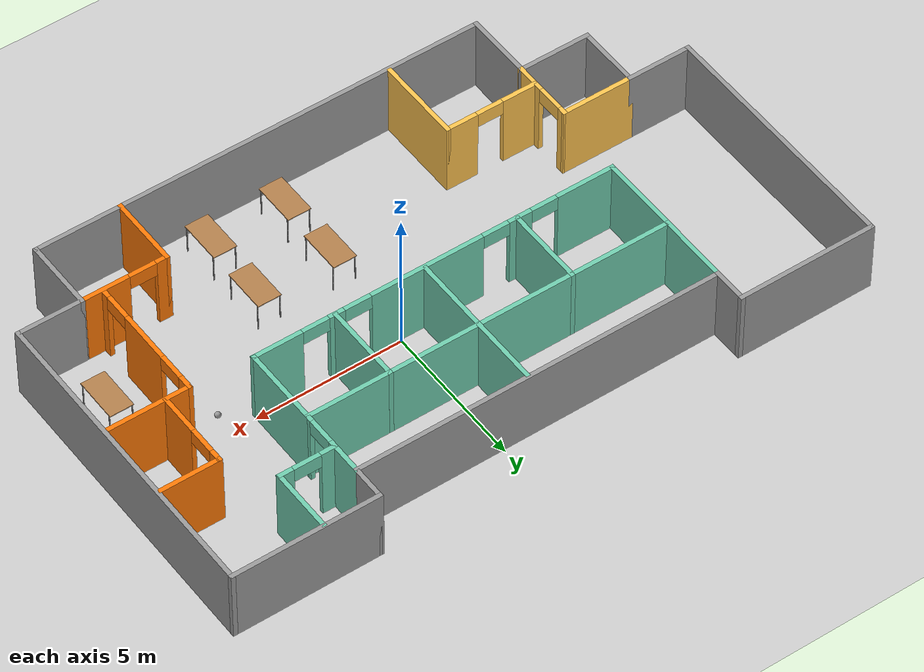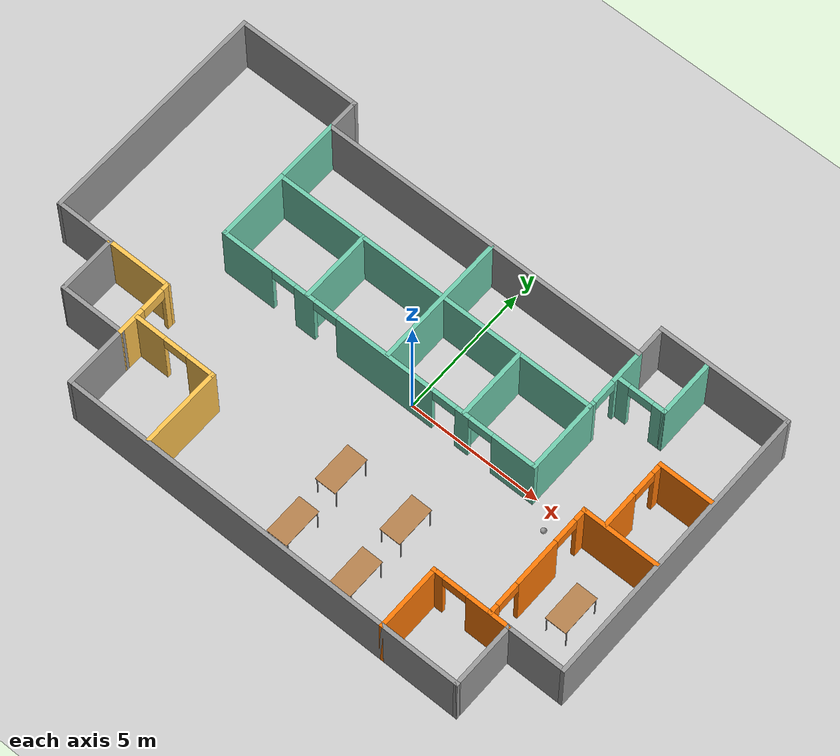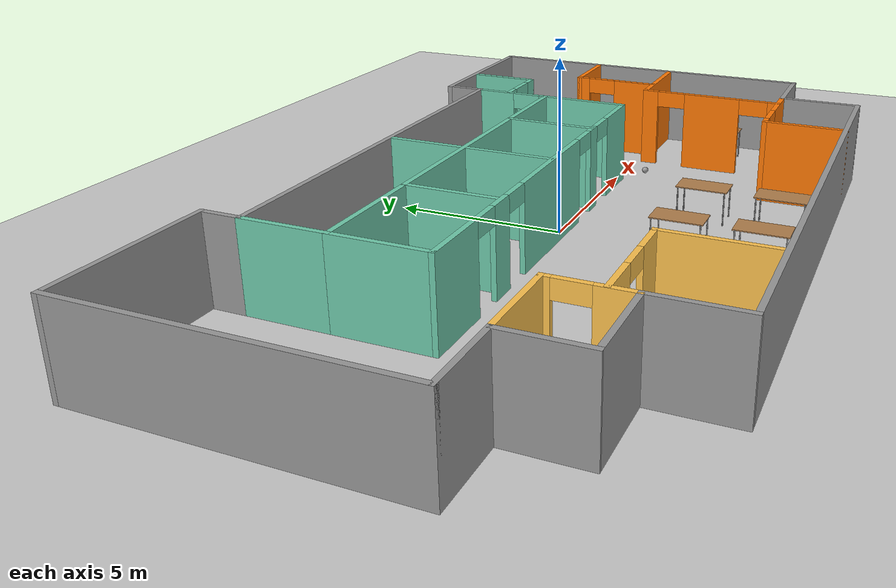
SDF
<sdf version="1.6">
 <world name="default">
  <model name="ground_plane">
   <static>1</static>
   <link name="link">
    <collision name="collision">
     <geometry><plane><normal>0 0 1</normal><size>100 100</size></plane></geometry>
     <surface><friction><ode><mu>100</mu><mu2>50</mu2></ode></friction></surface>
    </collision>
    <visual name="visual">
     <cast_shadows>0</cast_shadows>
     <geometry><plane><normal>0 0 1</normal><size>100 100</size></plane></geometry>
     <material>
      <script><uri>file://media/materials/scripts/gazebo.material</uri><name>Gazebo/Grey</name></script>
     </material>
    </visual>
   </link>
  </model>
  <model name="building">
   <pose>-1.15045 -0.53076 0 0 -0 0</pose>
   <link name="Wall_0">
    <collision name="Wall_0_Collision">
     <geometry><box><size>15.25 0.15 2.5</size></box></geometry>
     <pose>0 0 1.25 0 -0 0</pose>
    </collision>
    <visual name="Wall_0_Visual">
     <pose>0 0 1.25 0 -0 0</pose>
     <geometry><box><size>15.25 0.15 2.5</size></box></geometry>
     <material>
      <script><uri>file://media/materials/scripts/gazebo.material</uri><name>Gazebo/Grey</name></script>
      <ambient>1 1 1 1</ambient>
     </material>
     <meta><layer>0</layer></meta>
    </visual>
    <pose>1.25 -6.47476 0 0 -0 0</pose>
   </link>
   <link name="Wall_10">
    <collision name="Wall_10_Collision">
     <geometry><box><size>4.75 0.15 2.5</size></box></geometry>
     <pose>0 0 1.25 0 -0 0</pose>
    </collision>
    <visual name="Wall_10_Visual">
     <pose>0 0 1.25 0 -0 0</pose>
     <geometry><box><size>4.75 0.15 2.5</size></box></geometry>
     <material>
      <script><uri>file://media/materials/scripts/gazebo.material</uri><name>Gazebo/Grey</name></script>
      <ambient>1 1 1 1</ambient>
     </material>
     <meta><layer>0</layer></meta>
    </visual>
    <pose>-8.6 6.47524 0 0 -0 3.14159</pose>
   </link>
   <link name="Wall_11">
    <collision name="Wall_11_Collision">
     <geometry><box><size>8.75 0.15 2.5</size></box></geometry>
     <pose>0 0 1.25 0 -0 0</pose>
    </collision>
    <visual name="Wall_11_Visual">
     <pose>0 0 1.25 0 -0 0</pose>
     <geometry><box><size>8.75 0.15 2.5</size></box></geometry>
     <material>
      <script><uri>file://media/materials/scripts/gazebo.material</uri><name>Gazebo/Grey</name></script>
      <ambient>1 1 1 1</ambient>
     </material>
     <meta><layer>0</layer></meta>
    </visual>
    <pose>-10.9 2.17524 0 0 0 -1.5708</pose>
   </link>
   <link name="Wall_16">
    <collision name="Wall_16_Collision">
     <geometry><box><size>2.25 0.15 2.5</size></box></geometry>
     <pose>0 0 1.25 0 -0 0</pose>
    </collision>
    <visual name="Wall_16_Visual">
     <pose>0 0 1.25 0 -0 0</pose>
     <geometry><box><size>2.25 0.15 2.5</size></box></geometry>
     <material>
      <script><uri>file://media/materials/scripts/gazebo.material</uri><name>Gazebo/Grey</name></script>
      <ambient>1 1 1 1</ambient>
     </material>
     <meta><layer>0</layer></meta>
    </visual>
    <pose>-9.85 -2.12476 0 0 -0 0</pose>
   </link>
   <link name="Wall_17">
    <collision name="Wall_17_Collision">
     <geometry><box><size>2.25 0.15 2.5</size></box></geometry>
     <pose>0 0 1.25 0 -0 0</pose>
    </collision>
    <visual name="Wall_17_Visual">
     <pose>0 0 1.25 0 -0 0</pose>
     <geometry><box><size>2.25 0.15 2.5</size></box></geometry>
     <material>
      <script><uri>file://media/materials/scripts/gazebo.material</uri><name>Gazebo/Grey</name></script>
      <ambient>1 1 1 1</ambient>
     </material>
     <meta><layer>0</layer></meta>
    </visual>
    <pose>-8.8 -3.17476 0 0 0 -1.5708</pose>
   </link>
   <link name="Wall_18">
    <collision name="Wall_18_Collision">
     <geometry><box><size>2.5 0.15 2.5</size></box></geometry>
     <pose>0 0 1.25 0 -0 0</pose>
    </collision>
    <visual name="Wall_18_Visual">
     <pose>0 0 1.25 0 -0 0</pose>
     <geometry><box><size>2.5 0.15 2.5</size></box></geometry>
     <material>
      <script><uri>file://media/materials/scripts/gazebo.material</uri><name>Gazebo/Grey</name></script>
      <ambient>1 1 1 1</ambient>
     </material>
     <meta><layer>0</layer></meta>
    </visual>
    <pose>-7.62478 -4.225 0 0 0 -0.000201</pose>
   </link>
   <link name="Wall_19">
    <collision name="Wall_19_Collision">
     <geometry><box><size>2.4 0.15 2.5</size></box></geometry>
     <pose>0 0 1.25 0 -0 0</pose>
    </collision>
    <visual name="Wall_19_Visual">
     <pose>0 0 1.25 0 -0 0</pose>
     <geometry><box><size>2.4 0.15 2.5</size></box></geometry>
     <material>
      <script><uri>file://media/materials/scripts/gazebo.material</uri><name>Gazebo/Grey</name></script>
      <ambient>1 1 1 1</ambient>
     </material>
     <meta><layer>0</layer></meta>
    </visual>
    <pose>-6.44955 -5.35024 0 0 0 -1.5708</pose>
   </link>
   <link name="Wall_21">
    <pose>7.375 -4.12476 0 0 -0 3.14159</pose>
    <visual name="Wall_21_Visual_0">
     <pose>-0.674221 0 1.25 0 -0 0</pose>
     <geometry><box><size>1.65156 0.15 2.5</size></box></geometry>
     <material>
      <script><uri>file://media/materials/scripts/gazebo.material</uri><name>Gazebo/Grey</name></script>
      <ambient>0.996078 0.47451 0.0196078 1</ambient>
     </material>
     <meta><layer>0</layer></meta>
    </visual>
    <collision name="Wall_21_Collision_0">
     <geometry><box><size>1.65156 0.15 2.5</size></box></geometry>
     <pose>-0.674221 0 1.25 0 -0 0</pose>
    </collision>
    <visual name="Wall_21_Visual_1">
     <pose>1.27578 0 1.25 0 -0 0</pose>
     <geometry><box><size>0.448442 0.15 2.5</size></box></geometry>
     <material>
      <script><uri>file://media/materials/scripts/gazebo.material</uri><name>Gazebo/Grey</name></script>
      <ambient>0.996078 0.47451 0.0196078 1</ambient>
     </material>
     <meta><layer>0</layer></meta>
    </visual>
    <collision name="Wall_21_Collision_1">
     <geometry><box><size>0.448442 0.15 2.5</size></box></geometry>
     <pose>1.27578 0 1.25 0 -0 0</pose>
    </collision>
    <visual name="Wall_21_Visual_2">
     <pose>0.601558 0 2.25 0 -0 0</pose>
     <geometry><box><size>0.9 0.15 0.5</size></box></geometry>
     <material>
      <script><uri>file://media/materials/scripts/gazebo.material</uri><name>Gazebo/Grey</name></script>
      <ambient>0.996078 0.47451 0.0196078 1</ambient>
     </material>
     <meta><layer>0</layer></meta>
    </visual>
    <collision name="Wall_21_Collision_2">
     <geometry><box><size>0.9 0.15 0.5</size></box></geometry>
     <pose>0.601558 0 2.25 0 -0 0</pose>
    </collision>
   </link>
   <link name="Wall_22">
    <collision name="Wall_22_Collision">
     <geometry><box><size>2.5 0.15 2.5</size></box></geometry>
     <pose>0 0 1.25 0 -0 0</pose>
    </collision>
    <visual name="Wall_22_Visual">
     <pose>0 0 1.25 0 -0 0</pose>
     <geometry><box><size>2.5 0.15 2.5</size></box></geometry>
     <material>
      <script><uri>file://media/materials/scripts/gazebo.material</uri><name>Gazebo/Grey</name></script>
      <ambient>0.996078 0.47451 0.0196078 1</ambient>
     </material>
     <meta><layer>0</layer></meta>
    </visual>
    <pose>5.95 -5.29976 0 0 0 -1.5708</pose>
   </link>
   <link name="Wall_24">
    <pose>8.09845 -1.93009 0 0 -0 1.5708</pose>
    <visual name="Wall_24_Visual_0">
     <pose>-2.05684 0 1.25 0 -0 0</pose>
     <geometry><box><size>0.386318 0.15 2.5</size></box></geometry>
     <material>
      <script><uri>file://media/materials/scripts/gazebo.material</uri><name>Gazebo/Grey</name></script>
      <ambient>0.996078 0.47451 0.0196078 1</ambient>
     </material>
     <meta><layer>0</layer></meta>
    </visual>
    <collision name="Wall_24_Collision_0">
     <geometry><box><size>0.386318 0.15 2.5</size></box></geometry>
     <pose>-2.05684 0 1.25 0 -0 0</pose>
    </collision>
    <visual name="Wall_24_Visual_1">
     <pose>-0.061912 0 1.25 0 -0 0</pose>
     <geometry><box><size>1.80354 0.15 2.5</size></box></geometry>
     <material>
      <script><uri>file://media/materials/scripts/gazebo.material</uri><name>Gazebo/Grey</name></script>
      <ambient>0.996078 0.47451 0.0196078 1</ambient>
     </material>
     <meta><layer>0</layer></meta>
    </visual>
    <collision name="Wall_24_Collision_1">
     <geometry><box><size>1.80354 0.15 2.5</size></box></geometry>
     <pose>-0.061912 0 1.25 0 -0 0</pose>
    </collision>
    <visual name="Wall_24_Visual_2">
     <pose>1.99493 0 1.25 0 -0 0</pose>
     <geometry><box><size>0.510142 0.15 2.5</size></box></geometry>
     <material>
      <script><uri>file://media/materials/scripts/gazebo.material</uri><name>Gazebo/Grey</name></script>
      <ambient>0.996078 0.47451 0.0196078 1</ambient>
     </material>
     <meta><layer>0</layer></meta>
    </visual>
    <collision name="Wall_24_Collision_2">
     <geometry><box><size>0.510142 0.15 2.5</size></box></geometry>
     <pose>1.99493 0 1.25 0 -0 0</pose>
    </collision>
    <visual name="Wall_24_Visual_3">
     <pose>-1.41368 0 2.25 0 -0 0</pose>
     <geometry><box><size>0.9 0.15 0.5</size></box></geometry>
     <material>
      <script><uri>file://media/materials/scripts/gazebo.material</uri><name>Gazebo/Grey</name></script>
      <ambient>0.996078 0.47451 0.0196078 1</ambient>
     </material>
     <meta><layer>0</layer></meta>
    </visual>
    <collision name="Wall_24_Collision_3">
     <geometry><box><size>0.9 0.15 0.5</size></box></geometry>
     <pose>-1.41368 0 2.25 0 -0 0</pose>
    </collision>
    <visual name="Wall_24_Visual_4">
     <pose>1.28986 0 2.25 0 -0 0</pose>
     <geometry><box><size>0.9 0.15 0.5</size></box></geometry>
     <material>
      <script><uri>file://media/materials/scripts/gazebo.material</uri><name>Gazebo/Grey</name></script>
      <ambient>0.996078 0.47451 0.0196078 1</ambient>
     </material>
     <meta><layer>0</layer></meta>
    </visual>
    <collision name="Wall_24_Collision_4">
     <geometry><box><size>0.9 0.15 0.5</size></box></geometry>
     <pose>1.28986 0 2.25 0 -0 0</pose>
    </collision>
   </link>
   <link name="Wall_25">
    <collision name="Wall_25_Collision">
     <geometry><box><size>2.902 0.15 2.5</size></box></geometry>
     <pose>0 0 1.25 0 -0 0</pose>
    </collision>
    <visual name="Wall_25_Visual">
     <pose>0 0 1.25 0 -0 0</pose>
     <geometry><box><size>2.902 0.15 2.5</size></box></geometry>
     <material>
      <script><uri>file://media/materials/scripts/gazebo.material</uri><name>Gazebo/Grey</name></script>
      <ambient>0.996078 0.47451 0.0196078 1</ambient>
     </material>
     <meta><layer>0</layer></meta>
    </visual>
    <pose>9.47445 0.244763 0 0 -0 0</pose>
   </link>
   <link name="Wall_27">
    <pose>8.8886 1.58853 0 0 -0 1.57091</pose>
    <visual name="Wall_27_Visual_0">
     <pose>-0.675117 0 1.25 0 -0 0</pose>
     <geometry><box><size>1.39976 0.15 2.5</size></box></geometry>
     <material>
      <script><uri>file://media/materials/scripts/gazebo.material</uri><name>Gazebo/Grey</name></script>
      <ambient>0.996078 0.47451 0.0196078 1</ambient>
     </material>
     <meta><layer>0</layer></meta>
    </visual>
    <collision name="Wall_27_Collision_0">
     <geometry><box><size>1.39976 0.15 2.5</size></box></geometry>
     <pose>-0.675117 0 1.25 0 -0 0</pose>
    </collision>
    <visual name="Wall_27_Visual_1">
     <pose>1.14988 0 1.25 0 -0 0</pose>
     <geometry><box><size>0.450235 0.15 2.5</size></box></geometry>
     <material>
      <script><uri>file://media/materials/scripts/gazebo.material</uri><name>Gazebo/Grey</name></script>
      <ambient>0.996078 0.47451 0.0196078 1</ambient>
     </material>
     <meta><layer>0</layer></meta>
    </visual>
    <collision name="Wall_27_Collision_1">
     <geometry><box><size>0.450235 0.15 2.5</size></box></geometry>
     <pose>1.14988 0 1.25 0 -0 0</pose>
    </collision>
    <visual name="Wall_27_Visual_2">
     <pose>0.474765 0 2.25 0 -0 0</pose>
     <geometry><box><size>0.9 0.15 0.5</size></box></geometry>
     <material>
      <script><uri>file://media/materials/scripts/gazebo.material</uri><name>Gazebo/Grey</name></script>
      <ambient>0.996078 0.47451 0.0196078 1</ambient>
     </material>
     <meta><layer>0</layer></meta>
    </visual>
    <collision name="Wall_27_Collision_2">
     <geometry><box><size>0.9 0.15 0.5</size></box></geometry>
     <pose>0.474765 0 2.25 0 -0 0</pose>
    </collision>
   </link>
   <link name="Wall_28">
    <collision name="Wall_28_Collision">
     <geometry><box><size>2.062 0.15 2.5</size></box></geometry>
     <pose>0 0 1.25 0 -0 0</pose>
    </collision>
    <visual name="Wall_28_Visual">
     <pose>0 0 1.25 0 -0 0</pose>
     <geometry><box><size>2.062 0.15 2.5</size></box></geometry>
     <material>
      <script><uri>file://media/materials/scripts/gazebo.material</uri><name>Gazebo/Grey</name></script>
      <ambient>0.996078 0.47451 0.0196078 1</ambient>
     </material>
     <meta><layer>0</layer></meta>
    </visual>
    <pose>9.84445 2.88876 0 0 -0 0</pose>
   </link>
   <link name="Wall_3">
    <collision name="Wall_3_Collision">
     <geometry><box><size>2.5 0.15 2.5</size></box></geometry>
     <pose>0 0 1.25 0 -0 0</pose>
    </collision>
    <visual name="Wall_3_Visual">
     <pose>0 0 1.25 0 -0 0</pose>
     <geometry><box><size>2.5 0.15 2.5</size></box></geometry>
     <material>
      <script><uri>file://media/materials/scripts/gazebo.material</uri><name>Gazebo/Grey</name></script>
      <ambient>1 1 1 1</ambient>
     </material>
     <meta><layer>0</layer></meta>
    </visual>
    <pose>8.8 -5.29976 0 0 -0 1.5708</pose>
   </link>
   <link name="Wall_36">
    <pose>6.05 4.20024 0 0 0 -1.5708</pose>
    <visual name="Wall_36_Visual_0">
     <pose>-0.588316 0 1.25 0 -0 0</pose>
     <geometry><box><size>1.32337 0.15 2.5</size></box></geometry>
     <material>
      <script><uri>file://media/materials/scripts/gazebo.material</uri><name>Gazebo/Grey</name></script>
      <ambient>0.435294 0.796078 0.67451 1</ambient>
     </material>
     <meta><layer>0</layer></meta>
    </visual>
    <collision name="Wall_36_Collision_0">
     <geometry><box><size>1.32337 0.15 2.5</size></box></geometry>
     <pose>-0.588316 0 1.25 0 -0 0</pose>
    </collision>
    <visual name="Wall_36_Visual_1">
     <pose>1.11168 0 1.25 0 -0 0</pose>
     <geometry><box><size>0.276631 0.15 2.5</size></box></geometry>
     <material>
      <script><uri>file://media/materials/scripts/gazebo.material</uri><name>Gazebo/Grey</name></script>
      <ambient>0.435294 0.796078 0.67451 1</ambient>
     </material>
     <meta><layer>0</layer></meta>
    </visual>
    <collision name="Wall_36_Collision_1">
     <geometry><box><size>0.276631 0.15 2.5</size></box></geometry>
     <pose>1.11168 0 1.25 0 -0 0</pose>
    </collision>
    <visual name="Wall_36_Visual_2">
     <pose>0.523369 0 2.25 0 -0 0</pose>
     <geometry><box><size>0.9 0.15 0.5</size></box></geometry>
     <material>
      <script><uri>file://media/materials/scripts/gazebo.material</uri><name>Gazebo/Grey</name></script>
      <ambient>0.435294 0.796078 0.67451 1</ambient>
     </material>
     <meta><layer>0</layer></meta>
    </visual>
    <collision name="Wall_36_Collision_2">
     <geometry><box><size>0.9 0.15 0.5</size></box></geometry>
     <pose>0.523369 0 2.25 0 -0 0</pose>
    </collision>
   </link>
   <link name="Wall_37">
    <collision name="Wall_37_Collision">
     <geometry><box><size>12.5 0.15 2.5</size></box></geometry>
     <pose>0 0 1.25 0 -0 0</pose>
    </collision>
    <visual name="Wall_37_Visual">
     <pose>0 0 1.25 0 -0 0</pose>
     <geometry><box><size>12.5 0.15 2.5</size></box></geometry>
     <material>
      <script><uri>file://media/materials/scripts/gazebo.material</uri><name>Gazebo/Grey</name></script>
      <ambient>0.435294 0.796078 0.67451 1</ambient>
     </material>
     <meta><layer>0</layer></meta>
    </visual>
    <pose>-0.125 3.02524 0 0 -0 3.14159</pose>
   </link>
   <link name="Wall_38">
    <collision name="Wall_38_Collision">
     <geometry><box><size>2.5 0.15 2.5</size></box></geometry>
     <pose>0 0 1.25 0 -0 0</pose>
    </collision>
    <visual name="Wall_38_Visual">
     <pose>0 0 1.25 0 -0 0</pose>
     <geometry><box><size>2.5 0.15 2.5</size></box></geometry>
     <material>
      <script><uri>file://media/materials/scripts/gazebo.material</uri><name>Gazebo/Grey</name></script>
      <ambient>0.435294 0.796078 0.67451 1</ambient>
     </material>
     <meta><layer>0</layer></meta>
    </visual>
    <pose>-6.3 4.20024 0 0 -0 1.5708</pose>
   </link>
   <link name="Wall_4">
    <collision name="Wall_4_Collision">
     <geometry><box><size>2.25 0.15 2.5</size></box></geometry>
     <pose>0 0 1.25 0 -0 0</pose>
    </collision>
    <visual name="Wall_4_Visual">
     <pose>0 0 1.25 0 -0 0</pose>
     <geometry><box><size>2.25 0.15 2.5</size></box></geometry>
     <material>
      <script><uri>file://media/materials/scripts/gazebo.material</uri><name>Gazebo/Grey</name></script>
      <ambient>1 1 1 1</ambient>
     </material>
     <meta><layer>0</layer></meta>
    </visual>
    <pose>9.85 -4.12476 0 0 -0 0</pose>
   </link>
   <link name="Wall_40">
    <collision name="Wall_40_Collision">
     <geometry><box><size>2.7676 0.15 2.5</size></box></geometry>
     <pose>0 0 1.25 0 -0 0</pose>
    </collision>
    <visual name="Wall_40_Visual">
     <pose>0 0 1.25 0 -0 0</pose>
     <geometry><box><size>2.7676 0.15 2.5</size></box></geometry>
     <material>
      <script><uri>file://media/materials/scripts/gazebo.material</uri><name>Gazebo/Grey</name></script>
      <ambient>0.435294 0.796078 0.67451 1</ambient>
     </material>
     <meta><layer>0</layer></meta>
    </visual>
    <pose>6.05 1.71644 0 0 0 -1.5708</pose>
   </link>
   <link name="Wall_41">
    <pose>-0.125 0.388523 0 0 -0 3.14159</pose>
    <visual name="Wall_41_Visual_0">
     <pose>-5.40531 0 1.25 0 -0 0</pose>
     <geometry><box><size>1.68939 0.15 2.5</size></box></geometry>
     <material>
      <script><uri>file://media/materials/scripts/gazebo.material</uri><name>Gazebo/Grey</name></script>
      <ambient>0.435294 0.796078 0.67451 1</ambient>
     </material>
     <meta><layer>0</layer></meta>
    </visual>
    <collision name="Wall_41_Collision_0">
     <geometry><box><size>1.68939 0.15 2.5</size></box></geometry>
     <pose>-5.40531 0 1.25 0 -0 0</pose>
    </collision>
    <visual name="Wall_41_Visual_1">
     <pose>-3.39519 0 1.25 0 -0 0</pose>
     <geometry><box><size>0.530856 0.15 2.5</size></box></geometry>
     <material>
      <script><uri>file://media/materials/scripts/gazebo.material</uri><name>Gazebo/Grey</name></script>
      <ambient>0.435294 0.796078 0.67451 1</ambient>
     </material>
     <meta><layer>0</layer></meta>
    </visual>
    <collision name="Wall_41_Collision_1">
     <geometry><box><size>0.530856 0.15 2.5</size></box></geometry>
     <pose>-3.39519 0 1.25 0 -0 0</pose>
    </collision>
    <visual name="Wall_41_Visual_2">
     <pose>-0.305838 0 1.25 0 -0 0</pose>
     <geometry><box><size>3.84784 0.15 2.5</size></box></geometry>
     <material>
      <script><uri>file://media/materials/scripts/gazebo.material</uri><name>Gazebo/Grey</name></script>
      <ambient>0.435294 0.796078 0.67451 1</ambient>
     </material>
     <meta><layer>0</layer></meta>
    </visual>
    <collision name="Wall_41_Collision_2">
     <geometry><box><size>3.84784 0.15 2.5</size></box></geometry>
     <pose>-0.305838 0 1.25 0 -0 0</pose>
    </collision>
    <visual name="Wall_41_Visual_3">
     <pose>2.91359 0 1.25 0 -0 0</pose>
     <geometry><box><size>0.791011 0.15 2.5</size></box></geometry>
     <material>
      <script><uri>file://media/materials/scripts/gazebo.material</uri><name>Gazebo/Grey</name></script>
      <ambient>0.435294 0.796078 0.67451 1</ambient>
     </material>
     <meta><layer>0</layer></meta>
    </visual>
    <collision name="Wall_41_Collision_3">
     <geometry><box><size>0.791011 0.15 2.5</size></box></geometry>
     <pose>2.91359 0 1.25 0 -0 0</pose>
    </collision>
    <visual name="Wall_41_Visual_4">
     <pose>5.22955 0 1.25 0 -0 0</pose>
     <geometry><box><size>2.04091 0.15 2.5</size></box></geometry>
     <material>
      <script><uri>file://media/materials/scripts/gazebo.material</uri><name>Gazebo/Grey</name></script>
      <ambient>0.435294 0.796078 0.67451 1</ambient>
     </material>
     <meta><layer>0</layer></meta>
    </visual>
    <collision name="Wall_41_Collision_4">
     <geometry><box><size>2.04091 0.15 2.5</size></box></geometry>
     <pose>5.22955 0 1.25 0 -0 0</pose>
    </collision>
    <visual name="Wall_41_Visual_5">
     <pose>-4.11061 0 2.25 0 -0 0</pose>
     <geometry><box><size>0.9 0.15 0.5</size></box></geometry>
     <material>
      <script><uri>file://media/materials/scripts/gazebo.material</uri><name>Gazebo/Grey</name></script>
      <ambient>0.435294 0.796078 0.67451 1</ambient>
     </material>
     <meta><layer>0</layer></meta>
    </visual>
    <collision name="Wall_41_Collision_5">
     <geometry><box><size>0.9 0.15 0.5</size></box></geometry>
     <pose>-4.11061 0 2.25 0 -0 0</pose>
    </collision>
    <visual name="Wall_41_Visual_6">
     <pose>-2.67976 0 2.25 0 -0 0</pose>
     <geometry><box><size>0.9 0.15 0.5</size></box></geometry>
     <material>
      <script><uri>file://media/materials/scripts/gazebo.material</uri><name>Gazebo/Grey</name></script>
      <ambient>0.435294 0.796078 0.67451 1</ambient>
     </material>
     <meta><layer>0</layer></meta>
    </visual>
    <collision name="Wall_41_Collision_6">
     <geometry><box><size>0.9 0.15 0.5</size></box></geometry>
     <pose>-2.67976 0 2.25 0 -0 0</pose>
    </collision>
    <visual name="Wall_41_Visual_7">
     <pose>2.06808 0 2.25 0 -0 0</pose>
     <geometry><box><size>0.9 0.15 0.5</size></box></geometry>
     <material>
      <script><uri>file://media/materials/scripts/gazebo.material</uri><name>Gazebo/Grey</name></script>
      <ambient>0.435294 0.796078 0.67451 1</ambient>
     </material>
     <meta><layer>0</layer></meta>
    </visual>
    <collision name="Wall_41_Collision_7">
     <geometry><box><size>0.9 0.15 0.5</size></box></geometry>
     <pose>2.06808 0 2.25 0 -0 0</pose>
    </collision>
    <visual name="Wall_41_Visual_8">
     <pose>3.75909 0 2.25 0 -0 0</pose>
     <geometry><box><size>0.9 0.15 0.5</size></box></geometry>
     <material>
      <script><uri>file://media/materials/scripts/gazebo.material</uri><name>Gazebo/Grey</name></script>
      <ambient>0.435294 0.796078 0.67451 1</ambient>
     </material>
     <meta><layer>0</layer></meta>
    </visual>
    <collision name="Wall_41_Collision_8">
     <geometry><box><size>0.9 0.15 0.5</size></box></geometry>
     <pose>3.75909 0 2.25 0 -0 0</pose>
    </collision>
   </link>
   <link name="Wall_42">
    <collision name="Wall_42_Collision">
     <geometry><box><size>2.7676 0.15 2.5</size></box></geometry>
     <pose>0 0 1.25 0 -0 0</pose>
    </collision>
    <visual name="Wall_42_Visual">
     <pose>0 0 1.25 0 -0 0</pose>
     <geometry><box><size>2.7676 0.15 2.5</size></box></geometry>
     <material>
      <script><uri>file://media/materials/scripts/gazebo.material</uri><name>Gazebo/Grey</name></script>
      <ambient>0.435294 0.796078 0.67451 1</ambient>
     </material>
     <meta><layer>0</layer></meta>
    </visual>
    <pose>-6.3 1.71644 0 0 -0 1.5708</pose>
   </link>
   <link name="Wall_44">
    <collision name="Wall_44_Collision">
     <geometry><box><size>5 0.15 2.5</size></box></geometry>
     <pose>0 0 1.25 0 -0 0</pose>
    </collision>
    <visual name="Wall_44_Visual">
     <pose>0 0 1.25 0 -0 0</pose>
     <geometry><box><size>5 0.15 2.5</size></box></geometry>
     <material>
      <script><uri>file://media/materials/scripts/gazebo.material</uri><name>Gazebo/Grey</name></script>
      <ambient>0.435294 0.796078 0.67451 1</ambient>
     </material>
     <meta><layer>0</layer></meta>
    </visual>
    <pose>0.267974 2.87546 0 0 0 -1.5708</pose>
   </link>
   <link name="Wall_47">
    <collision name="Wall_47_Collision">
     <geometry><box><size>2.75 0.15 2.5</size></box></geometry>
     <pose>0 0 1.25 0 -0 0</pose>
    </collision>
    <visual name="Wall_47_Visual">
     <pose>0 0 1.25 0 -0 0</pose>
     <geometry><box><size>2.75 0.15 2.5</size></box></geometry>
     <material>
      <script><uri>file://media/materials/scripts/gazebo.material</uri><name>Gazebo/Grey</name></script>
      <ambient>0.435294 0.796078 0.67451 1</ambient>
     </material>
     <meta><layer>0</layer></meta>
    </visual>
    <pose>-2.94321 1.72586 0 0 0 -1.5708</pose>
   </link>
   <link name="Wall_5">
    <collision name="Wall_5_Collision">
     <geometry><box><size>10.75 0.15 2.5</size></box></geometry>
     <pose>0 0 1.25 0 -0 0</pose>
    </collision>
    <visual name="Wall_5_Visual">
     <pose>0 0 1.25 0 -0 0</pose>
     <geometry><box><size>10.75 0.15 2.5</size></box></geometry>
     <material>
      <script><uri>file://media/materials/scripts/gazebo.material</uri><name>Gazebo/Grey</name></script>
      <ambient>1 1 1 1</ambient>
     </material>
     <meta><layer>0</layer></meta>
    </visual>
    <pose>10.9 1.17524 0 0 -0 1.5708</pose>
   </link>
   <link name="Wall_50">
    <collision name="Wall_50_Collision">
     <geometry><box><size>2.75 0.15 2.5</size></box></geometry>
     <pose>0 0 1.25 0 -0 0</pose>
    </collision>
    <visual name="Wall_50_Visual">
     <pose>0 0 1.25 0 -0 0</pose>
     <geometry><box><size>2.75 0.15 2.5</size></box></geometry>
     <material>
      <script><uri>file://media/materials/scripts/gazebo.material</uri><name>Gazebo/Grey</name></script>
      <ambient>0.435294 0.796078 0.67451 1</ambient>
     </material>
     <meta><layer>0</layer></meta>
    </visual>
    <pose>3.30713 1.72586 0 0 0 -1.5708</pose>
   </link>
   <link name="Wall_52">
    <collision name="Wall_52_Collision">
     <geometry><box><size>2.5 0.15 2.5</size></box></geometry>
     <pose>0 0 1.25 0 -0 0</pose>
    </collision>
    <visual name="Wall_52_Visual">
     <pose>0 0 1.25 0 -0 0</pose>
     <geometry><box><size>2.5 0.15 2.5</size></box></geometry>
     <material>
      <script><uri>file://media/materials/scripts/gazebo.material</uri><name>Gazebo/Grey</name></script>
      <ambient>1 0.764706 0.305882 1</ambient>
     </material>
     <meta><layer>0</layer></meta>
    </visual>
    <pose>-7.625 -2.12476 0 0 -0 0</pose>
   </link>
   <link name="Wall_53">
    <pose>-6.44978 -3.175 0 0 0 -1.57058</pose>
    <visual name="Wall_53_Visual_0">
     <pose>-0.973972 0 1.25 0 -0 0</pose>
     <geometry><box><size>0.302529 0.15 2.5</size></box></geometry>
     <material>
      <script><uri>file://media/materials/scripts/gazebo.material</uri><name>Gazebo/Grey</name></script>
      <ambient>1 0.764706 0.305882 1</ambient>
     </material>
     <meta><layer>0</layer></meta>
    </visual>
    <collision name="Wall_53_Collision_0">
     <geometry><box><size>0.302529 0.15 2.5</size></box></geometry>
     <pose>-0.973972 0 1.25 0 -0 0</pose>
    </collision>
    <visual name="Wall_53_Visual_1">
     <pose>0.601265 0 1.25 0 -0 0</pose>
     <geometry><box><size>1.04794 0.15 2.5</size></box></geometry>
     <material>
      <script><uri>file://media/materials/scripts/gazebo.material</uri><name>Gazebo/Grey</name></script>
      <ambient>1 0.764706 0.305882 1</ambient>
     </material>
     <meta><layer>0</layer></meta>
    </visual>
    <collision name="Wall_53_Collision_1">
     <geometry><box><size>1.04794 0.15 2.5</size></box></geometry>
     <pose>0.601265 0 1.25 0 -0 0</pose>
    </collision>
    <visual name="Wall_53_Visual_2">
     <pose>-0.372707 0 2.25 0 -0 0</pose>
     <geometry><box><size>0.9 0.15 0.5</size></box></geometry>
     <material>
      <script><uri>file://media/materials/scripts/gazebo.material</uri><name>Gazebo/Grey</name></script>
      <ambient>1 0.764706 0.305882 1</ambient>
     </material>
     <meta><layer>0</layer></meta>
    </visual>
    <collision name="Wall_53_Collision_2">
     <geometry><box><size>0.9 0.15 0.5</size></box></geometry>
     <pose>-0.372707 0 2.25 0 -0 0</pose>
    </collision>
   </link>
   <link name="Wall_55">
    <pose>-4.87602 -3.53882 0 0 -0 0</pose>
    <visual name="Wall_55_Visual_0">
     <pose>-1.00296 0 1.25 0 -0 0</pose>
     <geometry><box><size>1.24408 0.15 2.5</size></box></geometry>
     <material>
      <script><uri>file://media/materials/scripts/gazebo.material</uri><name>Gazebo/Grey</name></script>
      <ambient>1 0.764706 0.305882 1</ambient>
     </material>
     <meta><layer>0</layer></meta>
    </visual>
    <collision name="Wall_55_Collision_0">
     <geometry><box><size>1.24408 0.15 2.5</size></box></geometry>
     <pose>-1.00296 0 1.25 0 -0 0</pose>
    </collision>
    <visual name="Wall_55_Visual_1">
     <pose>1.07204 0 1.25 0 -0 0</pose>
     <geometry><box><size>1.10592 0.15 2.5</size></box></geometry>
     <material>
      <script><uri>file://media/materials/scripts/gazebo.material</uri><name>Gazebo/Grey</name></script>
      <ambient>1 0.764706 0.305882 1</ambient>
     </material>
     <meta><layer>0</layer></meta>
    </visual>
    <collision name="Wall_55_Collision_1">
     <geometry><box><size>1.10592 0.15 2.5</size></box></geometry>
     <pose>1.07204 0 1.25 0 -0 0</pose>
    </collision>
    <visual name="Wall_55_Visual_2">
     <pose>0.069084 0 2.25 0 -0 0</pose>
     <geometry><box><size>0.9 0.15 0.5</size></box></geometry>
     <material>
      <script><uri>file://media/materials/scripts/gazebo.material</uri><name>Gazebo/Grey</name></script>
      <ambient>1 0.764706 0.305882 1</ambient>
     </material>
     <meta><layer>0</layer></meta>
    </visual>
    <collision name="Wall_55_Collision_2">
     <geometry><box><size>0.9 0.15 0.5</size></box></geometry>
     <pose>0.069084 0 2.25 0 -0 0</pose>
    </collision>
   </link>
   <link name="Wall_56">
    <collision name="Wall_56_Collision">
     <geometry><box><size>3 0.15 2.5</size></box></geometry>
     <pose>0 0 1.25 0 -0 0</pose>
    </collision>
    <visual name="Wall_56_Visual">
     <pose>0 0 1.25 0 -0 0</pose>
     <geometry><box><size>3 0.15 2.5</size></box></geometry>
     <material>
      <script><uri>file://media/materials/scripts/gazebo.material</uri><name>Gazebo/Grey</name></script>
      <ambient>1 0.764706 0.305882 1</ambient>
     </material>
     <meta><layer>0</layer></meta>
    </visual>
    <pose>-3.32602 -4.96382 0 0 0 -1.5708</pose>
   </link>
   <link name="Wall_58">
    <pose>6.96275 4.33258 0 0 -0 0</pose>
    <visual name="Wall_58_Visual_0">
     <pose>-0.699819 0 1.25 0 -0 0</pose>
     <geometry><box><size>0.559396 0.15 2.5</size></box></geometry>
     <material>
      <script><uri>file://media/materials/scripts/gazebo.material</uri><name>Gazebo/Grey</name></script>
      <ambient>0.435294 0.796078 0.67451 1</ambient>
     </material>
     <meta><layer>0</layer></meta>
    </visual>
    <collision name="Wall_58_Collision_0">
     <geometry><box><size>0.559396 0.15 2.5</size></box></geometry>
     <pose>-0.699819 0 1.25 0 -0 0</pose>
    </collision>
    <visual name="Wall_58_Visual_1">
     <pose>0.729698 0 1.25 0 -0 0</pose>
     <geometry><box><size>0.499637 0.15 2.5</size></box></geometry>
     <material>
      <script><uri>file://media/materials/scripts/gazebo.material</uri><name>Gazebo/Grey</name></script>
      <ambient>0.435294 0.796078 0.67451 1</ambient>
     </material>
     <meta><layer>0</layer></meta>
    </visual>
    <collision name="Wall_58_Collision_1">
     <geometry><box><size>0.499637 0.15 2.5</size></box></geometry>
     <pose>0.729698 0 1.25 0 -0 0</pose>
    </collision>
    <visual name="Wall_58_Visual_2">
     <pose>0.02988 0 2.25 0 -0 0</pose>
     <geometry><box><size>0.9 0.15 0.5</size></box></geometry>
     <material>
      <script><uri>file://media/materials/scripts/gazebo.material</uri><name>Gazebo/Grey</name></script>
      <ambient>0.435294 0.796078 0.67451 1</ambient>
     </material>
     <meta><layer>0</layer></meta>
    </visual>
    <collision name="Wall_58_Collision_2">
     <geometry><box><size>0.9 0.15 0.5</size></box></geometry>
     <pose>0.02988 0 2.25 0 -0 0</pose>
    </collision>
   </link>
   <link name="Wall_59">
    <collision name="Wall_59_Collision">
     <geometry><box><size>2.25 0.15 2.5</size></box></geometry>
     <pose>0 0 1.25 0 -0 0</pose>
    </collision>
    <visual name="Wall_59_Visual">
     <pose>0 0 1.25 0 -0 0</pose>
     <geometry><box><size>2.25 0.15 2.5</size></box></geometry>
     <material>
      <script><uri>file://media/materials/scripts/gazebo.material</uri><name>Gazebo/Grey</name></script>
      <ambient>0.435294 0.796078 0.67451 1</ambient>
     </material>
     <meta><layer>0</layer></meta>
    </visual>
    <pose>7.88366 5.38258 0 0 -0 1.5708</pose>
   </link>
   <link name="Wall_6">
    <collision name="Wall_6_Collision">
     <geometry><box><size>5 0.15 2.5</size></box></geometry>
     <pose>0 0 1.25 0 -0 0</pose>
    </collision>
    <visual name="Wall_6_Visual">
     <pose>0 0 1.25 0 -0 0</pose>
     <geometry><box><size>5 0.15 2.5</size></box></geometry>
     <material>
      <script><uri>file://media/materials/scripts/gazebo.material</uri><name>Gazebo/Grey</name></script>
      <ambient>1 1 1 1</ambient>
     </material>
     <meta><layer>0</layer></meta>
    </visual>
    <pose>8.475 6.47524 0 0 -0 3.14159</pose>
   </link>
   <link name="Wall_7">
    <collision name="Wall_7_Collision">
     <geometry><box><size>1.25 0.15 2.5</size></box></geometry>
     <pose>0 0 1.25 0 -0 0</pose>
    </collision>
    <visual name="Wall_7_Visual">
     <pose>0 0 1.25 0 -0 0</pose>
     <geometry><box><size>1.25 0.15 2.5</size></box></geometry>
     <material>
      <script><uri>file://media/materials/scripts/gazebo.material</uri><name>Gazebo/Grey</name></script>
      <ambient>1 1 1 1</ambient>
     </material>
     <meta><layer>0</layer></meta>
    </visual>
    <pose>6.05 5.92524 0 0 0 -1.5708</pose>
   </link>
   <link name="Wall_8">
    <collision name="Wall_8_Collision">
     <geometry><box><size>12.5 0.15 2.5</size></box></geometry>
     <pose>0 0 1.25 0 -0 0</pose>
    </collision>
    <visual name="Wall_8_Visual">
     <pose>0 0 1.25 0 -0 0</pose>
     <geometry><box><size>12.5 0.15 2.5</size></box></geometry>
     <material>
      <script><uri>file://media/materials/scripts/gazebo.material</uri><name>Gazebo/Grey</name></script>
      <ambient>1 1 1 1</ambient>
     </material>
     <meta><layer>0</layer></meta>
    </visual>
    <pose>-0.125 5.37524 0 0 -0 3.14159</pose>
   </link>
   <link name="Wall_9">
    <collision name="Wall_9_Collision">
     <geometry><box><size>1.25 0.15 2.5</size></box></geometry>
     <pose>0 0 1.25 0 -0 0</pose>
    </collision>
    <visual name="Wall_9_Visual">
     <pose>0 0 1.25 0 -0 0</pose>
     <geometry><box><size>1.25 0.15 2.5</size></box></geometry>
     <material>
      <script><uri>file://media/materials/scripts/gazebo.material</uri><name>Gazebo/Grey</name></script>
      <ambient>1 1 1 1</ambient>
     </material>
     <meta><layer>0</layer></meta>
    </visual>
    <pose>-6.3 5.92524 0 0 -0 1.5708</pose>
   </link>
   <static>1</static>
  </model>
  <model name="table_clone_2_clone">
   <static>1</static>
   <link name="link">
    <collision name="surface">
     <pose>0 0 1 0 -0 0</pose>
     <geometry><box><size>1.5 0.8 0.03</size></box></geometry>
     <surface><friction><ode><mu>0.6</mu><mu2>0.6</mu2></ode></friction></surface>
    </collision>
    <visual name="visual1">
     <pose>0 0 1 0 -0 0</pose>
     <geometry><box><size>1.5 0.8 0.03</size></box></geometry>
     <material>
      <script><uri>file://media/materials/scripts/gazebo.material</uri><name>Gazebo/Wood</name></script>
     </material>
    </visual>
    <collision name="front_left_leg">
     <pose>0.68 0.38 0.5 0 -0 0</pose>
     <geometry><cylinder><radius>0.02</radius><length>1</length></cylinder></geometry>
    </collision>
    <visual name="front_left_leg">
     <pose>0.68 0.38 0.5 0 -0 0</pose>
     <geometry><cylinder><radius>0.02</radius><length>1</length></cylinder></geometry>
     <material>
      <script><uri>file://media/materials/scripts/gazebo.material</uri><name>Gazebo/Grey</name></script>
     </material>
    </visual>
    <collision name="front_right_leg">
     <pose>0.68 -0.38 0.5 0 -0 0</pose>
     <geometry><cylinder><radius>0.02</radius><length>1</length></cylinder></geometry>
    </collision>
    <visual name="front_right_leg">
     <pose>0.68 -0.38 0.5 0 -0 0</pose>
     <geometry><cylinder><radius>0.02</radius><length>1</length></cylinder></geometry>
     <material>
      <script><uri>file://media/materials/scripts/gazebo.material</uri><name>Gazebo/Grey</name></script>
     </material>
    </visual>
    <collision name="back_right_leg">
     <pose>-0.68 -0.38 0.5 0 -0 0</pose>
     <geometry><cylinder><radius>0.02</radius><length>1</length></cylinder></geometry>
    </collision>
    <visual name="back_right_leg">
     <pose>-0.68 -0.38 0.5 0 -0 0</pose>
     <geometry><cylinder><radius>0.02</radius><length>1</length></cylinder></geometry>
     <material>
      <script><uri>file://media/materials/scripts/gazebo.material</uri><name>Gazebo/Grey</name></script>
     </material>
    </visual>
    <collision name="back_left_leg">
     <pose>-0.68 0.38 0.5 0 -0 0</pose>
     <geometry><cylinder><radius>0.02</radius><length>1</length></cylinder></geometry>
    </collision>
    <visual name="back_left_leg">
     <pose>-0.68 0.38 0.5 0 -0 0</pose>
     <geometry><cylinder><radius>0.02</radius><length>1</length></cylinder></geometry>
     <material>
      <script><uri>file://media/materials/scripts/gazebo.material</uri><name>Gazebo/Grey</name></script>
     </material>
    </visual>
   </link>
   <pose>2.64427 -5.7064 0 0 -0 1.56891</pose>
  </model>
  <model name="table_clone_2_clone_0">
   <static>1</static>
   <link name="link">
    <collision name="surface">
     <pose>0 0 1 0 -0 0</pose>
     <geometry><box><size>1.5 0.8 0.03</size></box></geometry>
     <surface><friction><ode><mu>0.6</mu><mu2>0.6</mu2></ode></friction></surface>
    </collision>
    <visual name="visual1">
     <pose>0 0 1 0 -0 0</pose>
     <geometry><box><size>1.5 0.8 0.03</size></box></geometry>
     <material>
      <script><uri>file://media/materials/scripts/gazebo.material</uri><name>Gazebo/Wood</name></script>
     </material>
    </visual>
    <collision name="front_left_leg">
     <pose>0.68 0.38 0.5 0 -0 0</pose>
     <geometry><cylinder><radius>0.02</radius><length>1</length></cylinder></geometry>
    </collision>
    <visual name="front_left_leg">
     <pose>0.68 0.38 0.5 0 -0 0</pose>
     <geometry><cylinder><radius>0.02</radius><length>1</length></cylinder></geometry>
     <material>
      <script><uri>file://media/materials/scripts/gazebo.material</uri><name>Gazebo/Grey</name></script>
     </material>
    </visual>
    <collision name="front_right_leg">
     <pose>0.68 -0.38 0.5 0 -0 0</pose>
     <geometry><cylinder><radius>0.02</radius><length>1</length></cylinder></geometry>
    </collision>
    <visual name="front_right_leg">
     <pose>0.68 -0.38 0.5 0 -0 0</pose>
     <geometry><cylinder><radius>0.02</radius><length>1</length></cylinder></geometry>
     <material>
      <script><uri>file://media/materials/scripts/gazebo.material</uri><name>Gazebo/Grey</name></script>
     </material>
    </visual>
    <collision name="back_right_leg">
     <pose>-0.68 -0.38 0.5 0 -0 0</pose>
     <geometry><cylinder><radius>0.02</radius><length>1</length></cylinder></geometry>
    </collision>
    <visual name="back_right_leg">
     <pose>-0.68 -0.38 0.5 0 -0 0</pose>
     <geometry><cylinder><radius>0.02</radius><length>1</length></cylinder></geometry>
     <material>
      <script><uri>file://media/materials/scripts/gazebo.material</uri><name>Gazebo/Grey</name></script>
     </material>
    </visual>
    <collision name="back_left_leg">
     <pose>-0.68 0.38 0.5 0 -0 0</pose>
     <geometry><cylinder><radius>0.02</radius><length>1</length></cylinder></geometry>
    </collision>
    <visual name="back_left_leg">
     <pose>-0.68 0.38 0.5 0 -0 0</pose>
     <geometry><cylinder><radius>0.02</radius><length>1</length></cylinder></geometry>
     <material>
      <script><uri>file://media/materials/scripts/gazebo.material</uri><name>Gazebo/Grey</name></script>
     </material>
    </visual>
   </link>
   <pose>0.101848 -5.67563 0 0 -0 1.56891</pose>
  </model>
  <model name="table_clone_2_clone_2">
   <static>1</static>
   <link name="link">
    <collision name="surface">
     <pose>0 0 1 0 -0 0</pose>
     <geometry><box><size>1.5 0.8 0.03</size></box></geometry>
     <surface><friction><ode><mu>0.6</mu><mu2>0.6</mu2></ode></friction></surface>
    </collision>
    <visual name="visual1">
     <pose>0 0 1 0 -0 0</pose>
     <geometry><box><size>1.5 0.8 0.03</size></box></geometry>
     <material>
      <script><uri>file://media/materials/scripts/gazebo.material</uri><name>Gazebo/Wood</name></script>
     </material>
    </visual>
    <collision name="front_left_leg">
     <pose>0.68 0.38 0.5 0 -0 0</pose>
     <geometry><cylinder><radius>0.02</radius><length>1</length></cylinder></geometry>
    </collision>
    <visual name="front_left_leg">
     <pose>0.68 0.38 0.5 0 -0 0</pose>
     <geometry><cylinder><radius>0.02</radius><length>1</length></cylinder></geometry>
     <material>
      <script><uri>file://media/materials/scripts/gazebo.material</uri><name>Gazebo/Grey</name></script>
     </material>
    </visual>
    <collision name="front_right_leg">
     <pose>0.68 -0.38 0.5 0 -0 0</pose>
     <geometry><cylinder><radius>0.02</radius><length>1</length></cylinder></geometry>
    </collision>
    <visual name="front_right_leg">
     <pose>0.68 -0.38 0.5 0 -0 0</pose>
     <geometry><cylinder><radius>0.02</radius><length>1</length></cylinder></geometry>
     <material>
      <script><uri>file://media/materials/scripts/gazebo.material</uri><name>Gazebo/Grey</name></script>
     </material>
    </visual>
    <collision name="back_right_leg">
     <pose>-0.68 -0.38 0.5 0 -0 0</pose>
     <geometry><cylinder><radius>0.02</radius><length>1</length></cylinder></geometry>
    </collision>
    <visual name="back_right_leg">
     <pose>-0.68 -0.38 0.5 0 -0 0</pose>
     <geometry><cylinder><radius>0.02</radius><length>1</length></cylinder></geometry>
     <material>
      <script><uri>file://media/materials/scripts/gazebo.material</uri><name>Gazebo/Grey</name></script>
     </material>
    </visual>
    <collision name="back_left_leg">
     <pose>-0.68 0.38 0.5 0 -0 0</pose>
     <geometry><cylinder><radius>0.02</radius><length>1</length></cylinder></geometry>
    </collision>
    <visual name="back_left_leg">
     <pose>-0.68 0.38 0.5 0 -0 0</pose>
     <geometry><cylinder><radius>0.02</radius><length>1</length></cylinder></geometry>
     <material>
      <script><uri>file://media/materials/scripts/gazebo.material</uri><name>Gazebo/Grey</name></script>
     </material>
    </visual>
   </link>
   <pose>0.080174 -3.42178 0 0 -0 1.56891</pose>
  </model>
  <model name="table_clone_2_clone_3">
   <static>1</static>
   <link name="link">
    <collision name="surface">
     <pose>0 0 1 0 -0 0</pose>
     <geometry><box><size>1.5 0.8 0.03</size></box></geometry>
     <surface><friction><ode><mu>0.6</mu><mu2>0.6</mu2></ode></friction></surface>
    </collision>
    <visual name="visual1">
     <pose>0 0 1 0 -0 0</pose>
     <geometry><box><size>1.5 0.8 0.03</size></box></geometry>
     <material>
      <script><uri>file://media/materials/scripts/gazebo.material</uri><name>Gazebo/Wood</name></script>
     </material>
    </visual>
    <collision name="front_left_leg">
     <pose>0.68 0.38 0.5 0 -0 0</pose>
     <geometry><cylinder><radius>0.02</radius><length>1</length></cylinder></geometry>
    </collision>
    <visual name="front_left_leg">
     <pose>0.68 0.38 0.5 0 -0 0</pose>
     <geometry><cylinder><radius>0.02</radius><length>1</length></cylinder></geometry>
     <material>
      <script><uri>file://media/materials/scripts/gazebo.material</uri><name>Gazebo/Grey</name></script>
     </material>
    </visual>
    <collision name="front_right_leg">
     <pose>0.68 -0.38 0.5 0 -0 0</pose>
     <geometry><cylinder><radius>0.02</radius><length>1</length></cylinder></geometry>
    </collision>
    <visual name="front_right_leg">
     <pose>0.68 -0.38 0.5 0 -0 0</pose>
     <geometry><cylinder><radius>0.02</radius><length>1</length></cylinder></geometry>
     <material>
      <script><uri>file://media/materials/scripts/gazebo.material</uri><name>Gazebo/Grey</name></script>
     </material>
    </visual>
    <collision name="back_right_leg">
     <pose>-0.68 -0.38 0.5 0 -0 0</pose>
     <geometry><cylinder><radius>0.02</radius><length>1</length></cylinder></geometry>
    </collision>
    <visual name="back_right_leg">
     <pose>-0.68 -0.38 0.5 0 -0 0</pose>
     <geometry><cylinder><radius>0.02</radius><length>1</length></cylinder></geometry>
     <material>
      <script><uri>file://media/materials/scripts/gazebo.material</uri><name>Gazebo/Grey</name></script>
     </material>
    </visual>
    <collision name="back_left_leg">
     <pose>-0.68 0.38 0.5 0 -0 0</pose>
     <geometry><cylinder><radius>0.02</radius><length>1</length></cylinder></geometry>
    </collision>
    <visual name="back_left_leg">
     <pose>-0.68 0.38 0.5 0 -0 0</pose>
     <geometry><cylinder><radius>0.02</radius><length>1</length></cylinder></geometry>
     <material>
      <script><uri>file://media/materials/scripts/gazebo.material</uri><name>Gazebo/Grey</name></script>
     </material>
    </visual>
   </link>
   <pose>2.65966 -3.44234 0 0 -0 1.56891</pose>
  </model>
  <model name="table_clone_2_clone_3_clone">
   <static>1</static>
   <link name="link">
    <collision name="surface">
     <pose>0 0 1 0 -0 0</pose>
     <geometry><box><size>1.5 0.8 0.03</size></box></geometry>
     <surface><friction><ode><mu>0.6</mu><mu2>0.6</mu2></ode></friction></surface>
    </collision>
    <visual name="visual1">
     <pose>0 0 1 0 -0 0</pose>
     <geometry><box><size>1.5 0.8 0.03</size></box></geometry>
     <material>
      <script><uri>file://media/materials/scripts/gazebo.material</uri><name>Gazebo/Wood</name></script>
     </material>
    </visual>
    <collision name="front_left_leg">
     <pose>0.68 0.38 0.5 0 -0 0</pose>
     <geometry><cylinder><radius>0.02</radius><length>1</length></cylinder></geometry>
    </collision>
    <visual name="front_left_leg">
     <pose>0.68 0.38 0.5 0 -0 0</pose>
     <geometry><cylinder><radius>0.02</radius><length>1</length></cylinder></geometry>
     <material>
      <script><uri>file://media/materials/scripts/gazebo.material</uri><name>Gazebo/Grey</name></script>
     </material>
    </visual>
    <collision name="front_right_leg">
     <pose>0.68 -0.38 0.5 0 -0 0</pose>
     <geometry><cylinder><radius>0.02</radius><length>1</length></cylinder></geometry>
    </collision>
    <visual name="front_right_leg">
     <pose>0.68 -0.38 0.5 0 -0 0</pose>
     <geometry><cylinder><radius>0.02</radius><length>1</length></cylinder></geometry>
     <material>
      <script><uri>file://media/materials/scripts/gazebo.material</uri><name>Gazebo/Grey</name></script>
     </material>
    </visual>
    <collision name="back_right_leg">
     <pose>-0.68 -0.38 0.5 0 -0 0</pose>
     <geometry><cylinder><radius>0.02</radius><length>1</length></cylinder></geometry>
    </collision>
    <visual name="back_right_leg">
     <pose>-0.68 -0.38 0.5 0 -0 0</pose>
     <geometry><cylinder><radius>0.02</radius><length>1</length></cylinder></geometry>
     <material>
      <script><uri>file://media/materials/scripts/gazebo.material</uri><name>Gazebo/Grey</name></script>
     </material>
    </visual>
    <collision name="back_left_leg">
     <pose>-0.68 0.38 0.5 0 -0 0</pose>
     <geometry><cylinder><radius>0.02</radius><length>1</length></cylinder></geometry>
    </collision>
    <visual name="back_left_leg">
     <pose>-0.68 0.38 0.5 0 -0 0</pose>
     <geometry><cylinder><radius>0.02</radius><length>1</length></cylinder></geometry>
     <material>
      <script><uri>file://media/materials/scripts/gazebo.material</uri><name>Gazebo/Grey</name></script>
     </material>
    </visual>
   </link>
   <pose>8.30254 -2.4653 0 0 -0 1.56891</pose>
  </model>
  <model name="my_ball">
   <link name="link_0">
    <inertial>
     <mass>1</mass>
     <inertia><ixx>0.1</ixx><ixy>0</ixy><ixz>0</ixz><iyy>0.1</iyy><iyz>0</iyz><izz>0.1</izz></inertia>
    </inertial>
    <visual name="visual">
     <geometry><sphere><radius>0.1</radius></sphere></geometry>
     <material>
      <lighting>1</lighting>
      <script><uri>file://media/materials/scripts/gazebo.material</uri><name>Gazebo/Grey</name></script>
      <shader type="pixel"><normal_map>__default__</normal_map></shader>
      <ambient>1 1 1 1</ambient>
      <diffuse>1 1 1 1</diffuse>
      <specular>1 1 1 1</specular>
      <emissive>1 1 1 1</emissive>
     </material>
    </visual>
    <collision name="collision">
     <geometry><sphere><radius>0.1</radius></sphere></geometry>
     <surface>
      <friction>
       <ode><mu>1</mu><mu2>1</mu2><fdir1>0 0 0</fdir1><slip1>0</slip1><slip2>0</slip2></ode>
       <torsional>
        <coefficient>1</coefficient>
        <patch_radius>0</patch_radius>
        <surface_radius>0</surface_radius>
        <use_patch_radius>1</use_patch_radius>
        <ode><slip>0</slip></ode>
       </torsional>
      </friction>
      <bounce><restitution_coefficient>0</restitution_coefficient><threshold>1e+06</threshold></bounce>
      <contact>
       <collide_without_contact>0</collide_without_contact>
       <collide_without_contact_bitmask>1</collide_without_contact_bitmask>
       <collide_bitmask>1</collide_bitmask>
       <ode>
        <soft_cfm>0</soft_cfm>
        <soft_erp>0.2</soft_erp>
        <kp>1e+13</kp>
        <kd>1</kd>
        <max_vel>0.01</max_vel>
        <min_depth>0</min_depth>
       </ode>
       <bullet>
        <split_impulse>1</split_impulse>
        <split_impulse_penetration_threshold>-0.01</split_impulse_penetration_threshold>
        <soft_cfm>0</soft_cfm>
        <soft_erp>0.2</soft_erp>
        <kp>1e+13</kp>
        <kd>1</kd>
       </bullet>
      </contact>
     </surface>
    </collision>
   </link>
   <static>0</static>
   <pose>5.80667 -0.699196 0.1 0 -0 0</pose>
  </model>
 </world>
</sdf>
